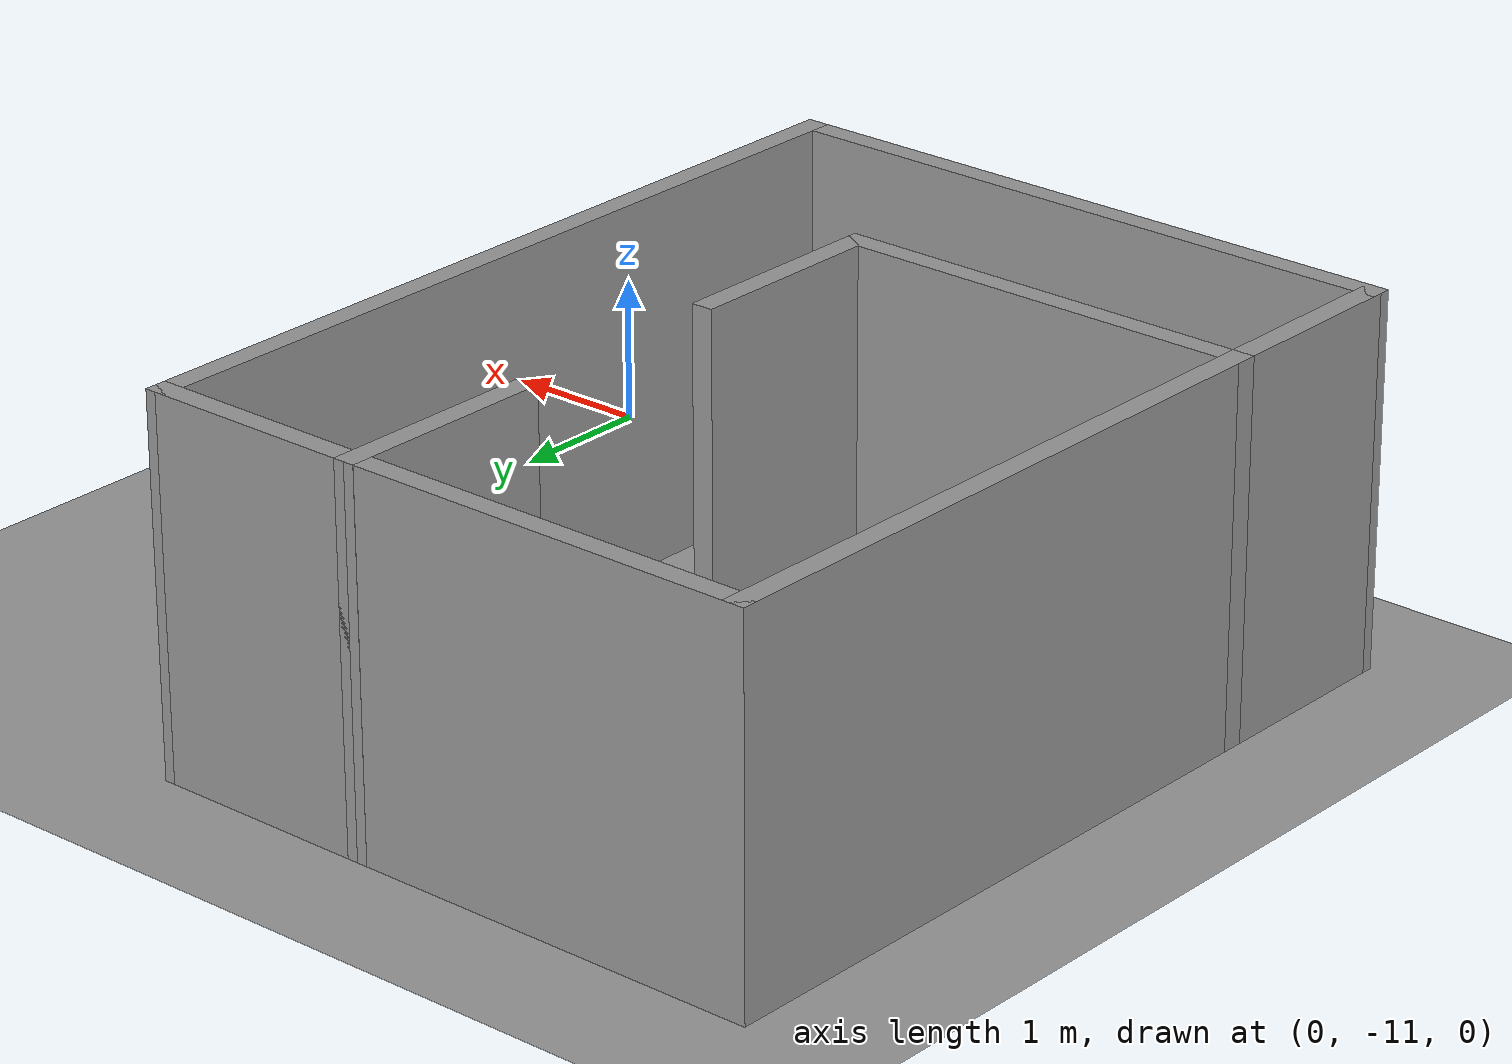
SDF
<sdf version="1.6">
 <world name="default">
  <light name="sun" type="directional">
   <pose>0 0 10 0 -0 0</pose>
   <diffuse>0.8 0.8 0.8 1</diffuse>
   <specular>0.2 0.2 0.2 1</specular>
   <attenuation>
    <range>1000</range>
    <constant>0.9</constant>
    <linear>0.01</linear>
    <quadratic>0.001</quadratic>
   </attenuation>
   <direction>0.5 0.1 -0.9</direction>
  </light>
  <scene><ambient>0.4 0.4 0.4 1</ambient><background>0.7 0.7 0.7 1</background><shadows>1</shadows></scene>
  <physics name="default_physics" default="0" type="ode">
   <max_step_size>0.01</max_step_size>
   <real_time_factor>1</real_time_factor>
   <real_time_update_rate>100</real_time_update_rate>
  </physics>
  <model name="ground_plane_0">
   <static>1</static>
   <link name="link">
    <collision name="collision">
     <geometry><plane><normal>0 0 1</normal><size>100 100</size></plane></geometry>
     <surface><friction><ode><mu>100</mu><mu2>50</mu2></ode></friction></surface>
    </collision>
    <visual name="visual">
     <cast_shadows>0</cast_shadows>
     <geometry><plane><normal>0 0 1</normal><size>100 100</size></plane></geometry>
     <material>
      <script><uri>file://media/materials/scripts/gazebo.material</uri><name>Gazebo/Grey</name></script>
     </material>
    </visual>
    <velocity_decay><linear>0</linear><angular>0</angular></velocity_decay>
   </link>
   <pose>0.497681 0 0 0 -0 0</pose>
  </model>
  <gravity>0 0 -9.8</gravity>
  <magnetic_field>6e-06 2.3e-05 -4.2e-05</magnetic_field>
  <atmosphere type="adiabatic"/>
  <spherical_coordinates>
   <surface_model>EARTH_WGS84</surface_model>
   <latitude_deg>0</latitude_deg>
   <longitude_deg>0</longitude_deg>
   <elevation>0</elevation>
   <heading_deg>0</heading_deg>
  </spherical_coordinates>
  <model name="room_with_door">
   <pose>-3.79736 -8.12244 0 0 -0 0</pose>
   <link name="Wall_24">
    <collision name="Wall_24_Collision">
     <geometry><box><size>4.5 0.15 2.5</size></box></geometry>
     <pose>0 0 1.25 0 -0 0</pose>
    </collision>
    <visual name="Wall_24_Visual">
     <pose>0 0 1.25 0 -0 0</pose>
     <geometry><box><size>4.5 0.15 2.5</size></box></geometry>
     <material>
      <script><uri>file://media/materials/scripts/gazebo.material</uri><name>Gazebo/Grey</name></script>
      <ambient>1 1 1 1</ambient>
     </material>
    </visual>
    <pose>-2.1789 0.678658 0 0 -0 1.5708</pose>
   </link>
   <link name="Wall_25">
    <collision name="Wall_25_Collision">
     <geometry><box><size>3 0.15 2.5</size></box></geometry>
     <pose>0 0 1.25 0 -0 0</pose>
    </collision>
    <visual name="Wall_25_Visual">
     <pose>0 0 1.25 0 -0 0</pose>
     <geometry><box><size>3 0.15 2.5</size></box></geometry>
     <material>
      <script><uri>file://media/materials/scripts/gazebo.material</uri><name>Gazebo/Grey</name></script>
      <ambient>1 1 1 1</ambient>
     </material>
    </visual>
    <pose>-0.753903 2.85366 0 0 -0 0</pose>
   </link>
   <link name="Wall_26">
    <collision name="Wall_26_Collision">
     <geometry><box><size>1.5 0.15 2.5</size></box></geometry>
     <pose>0 0 1.25 0 -0 0</pose>
    </collision>
    <visual name="Wall_26_Visual">
     <pose>0 0 1.25 0 -0 0</pose>
     <geometry><box><size>1.5 0.15 2.5</size></box></geometry>
     <material>
      <script><uri>file://media/materials/scripts/gazebo.material</uri><name>Gazebo/Grey</name></script>
      <ambient>1 1 1 1</ambient>
     </material>
    </visual>
    <pose>0.671097 2.17866 0 0 0 -1.5708</pose>
   </link>
   <link name="Wall_28">
    <collision name="Wall_28_Collision">
     <geometry><box><size>3 0.15 2.5</size></box></geometry>
     <pose>0 0 1.25 0 -0 0</pose>
    </collision>
    <visual name="Wall_28_Visual">
     <pose>0 0 1.25 0 -0 0</pose>
     <geometry><box><size>3 0.15 2.5</size></box></geometry>
     <material>
      <script><uri>file://media/materials/scripts/gazebo.material</uri><name>Gazebo/Grey</name></script>
      <ambient>1 1 1 1</ambient>
     </material>
    </visual>
    <pose>-0.753903 -1.49634 0 0 -0 0</pose>
   </link>
   <link name="Wall_29">
    <collision name="Wall_29_Collision">
     <geometry><box><size>1.5 0.15 2.5</size></box></geometry>
     <pose>0 0 1.25 0 -0 0</pose>
    </collision>
    <visual name="Wall_29_Visual">
     <pose>0 0 1.25 0 -0 0</pose>
     <geometry><box><size>1.5 0.15 2.5</size></box></geometry>
     <material>
      <script><uri>file://media/materials/scripts/gazebo.material</uri><name>Gazebo/Grey</name></script>
      <ambient>1 1 1 1</ambient>
     </material>
    </visual>
    <pose>0.671097 -0.821342 0 0 -0 1.5708</pose>
   </link>
   <link name="Wall_31">
    <collision name="Wall_31_Collision">
     <geometry><box><size>1.5 0.15 2.5</size></box></geometry>
     <pose>0 0 1.25 0 -0 0</pose>
    </collision>
    <visual name="Wall_31_Visual">
     <pose>0 0 1.25 0 -0 0</pose>
     <geometry><box><size>1.5 0.15 2.5</size></box></geometry>
     <material>
      <script><uri>file://media/materials/scripts/gazebo.material</uri><name>Gazebo/Grey</name></script>
      <ambient>1 1 1 1</ambient>
     </material>
    </visual>
    <pose>-2.1789 -2.17134 0 0 0 -1.5708</pose>
   </link>
   <link name="Wall_32">
    <collision name="Wall_32_Collision">
     <geometry><box><size>4.50757 0.15 2.5</size></box></geometry>
     <pose>0 0 1.25 0 -0 0</pose>
    </collision>
    <visual name="Wall_32_Visual">
     <pose>0 0 1.25 0 -0 0</pose>
     <geometry><box><size>4.50757 0.15 2.5</size></box></geometry>
     <material>
      <script><uri>file://media/materials/scripts/gazebo.material</uri><name>Gazebo/Grey</name></script>
      <ambient>1 1 1 1</ambient>
     </material>
    </visual>
    <pose>-0.000123 -2.85012 0 0 0 -0.001735</pose>
   </link>
   <link name="Wall_33">
    <collision name="Wall_33_Collision">
     <geometry><box><size>5.85 0.15 2.5</size></box></geometry>
     <pose>0 0 1.25 0 -0 0</pose>
    </collision>
    <visual name="Wall_33_Visual">
     <pose>0 0 1.25 0 -0 0</pose>
     <geometry><box><size>5.85 0.15 2.5</size></box></geometry>
     <material>
      <script><uri>file://media/materials/scripts/gazebo.material</uri><name>Gazebo/Grey</name></script>
      <ambient>1 1 1 1</ambient>
     </material>
    </visual>
    <pose>2.17866 -0.003903 0 0 -0 1.5708</pose>
   </link>
   <link name="Wall_37">
    <collision name="Wall_37_Collision">
     <geometry><box><size>1.65758 0.15 2.5</size></box></geometry>
     <pose>0 0 1.25 0 -0 0</pose>
    </collision>
    <visual name="Wall_37_Visual">
     <pose>0 0 1.25 0 -0 0</pose>
     <geometry><box><size>1.65758 0.15 2.5</size></box></geometry>
     <material>
      <script><uri>file://media/materials/scripts/gazebo.material</uri><name>Gazebo/Grey</name></script>
      <ambient>1 1 1 1</ambient>
     </material>
    </visual>
    <pose>1.42488 2.84988 0 0 -0 3.13658</pose>
   </link>
   <static>1</static>
  </model>
 </world>
</sdf>
